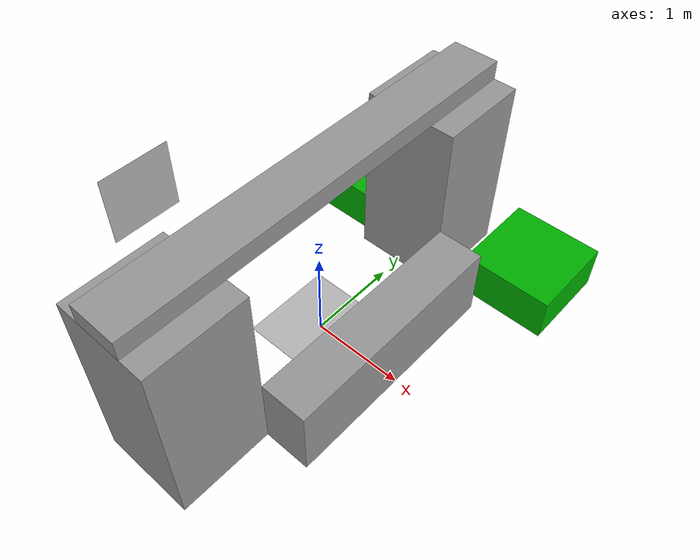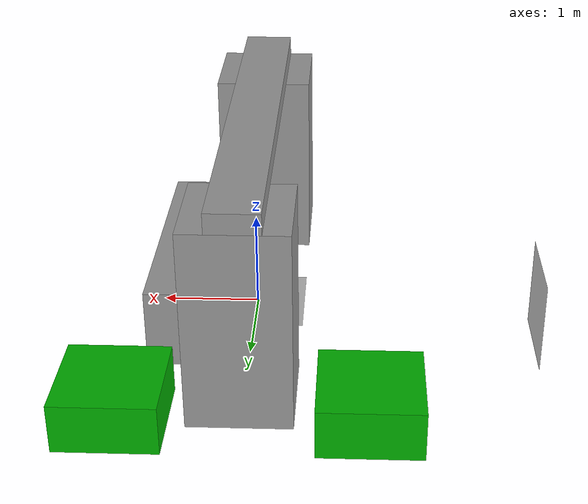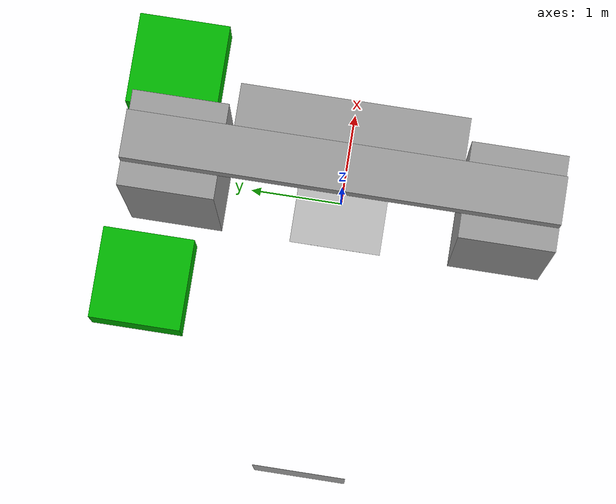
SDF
<?xml version="1.0" ?>
<sdf version="1.6">
  <world name="scene">
    <model name="floor">
      <static>1</static>
      <link name="floor_world_link"/>
      <link name="floor_link">
        <pose>0 0 0 0 0 0</pose>
        <gravity>0</gravity>
        <visual name="floor_visual">
          <geometry>
            <plane>
              <normal>0 0 1</normal>
              <size>1 1</size>
            </plane>
          </geometry>
        </visual>
        <collision name="floor_col">
          <geometry>
            <plane>
              <normal>0 0 1</normal>
              <size>100 100</size>
            </plane>
          </geometry>
        </collision>
      </link>
      <joint name="floor_base" type="fixed">
        <parent>floor_world_link</parent>
        <child>floor_link</child>
      </joint>
    </model>
    <model name="backplate">
      <static>1</static>
      <link name="backplate_world_link"/>
      <link name="backplate_link">
        <pose>-3 0 0 0 0 0</pose>
        <gravity>0</gravity>
        <visual name="backplate_visual">
          <geometry>
            <plane>
              <normal>1 0 0</normal>
              <size>1 1</size>
            </plane>
          </geometry>
        </visual>
        <collision name="backplate_col">
          <geometry>
            <plane>
              <normal>1 0 0</normal>
              <size>100 100</size>
            </plane>
          </geometry>
        </collision>
      </link>
      <joint name="backplate_base" type="fixed">
        <parent>backplate_world_link</parent>
        <child>backplate_link</child>
      </joint>
    </model>
    <model name="lowbox">
      <static>1</static>
      <link name="lowbox_world_link"/>
      <link name="lowbox_link">
        <pose>0.75 0.0 0.4 0 0 0</pose>
        <gravity>0</gravity>
        <visual name="lowbox_visual">
          <geometry>
            <box>
              <size>0.5 2.5 0.8</size>
            </box>
          </geometry>
          <material>
            <ambient>0.6 0.6 0.6 1</ambient>
            <diffuse>0.6 0.6 0.6 1</diffuse>
            <specular>0.1 0.1 0.1 1</specular>
            <emissive>0 0 0 0</emissive>
          </material>
        </visual>
        <collision name="lowbox_col">
          <geometry>
            <box>
              <size>0.5 2.5 0.8</size>
            </box>
          </geometry>
        </collision>
      </link>
      <joint name="lowbox_base" type="fixed">
        <parent>lowbox_world_link</parent>
        <child>lowbox_link</child>
      </joint>
    </model>
    <model name="highbox_left">
      <static>1</static>
      <link name="highbox_left_world_link"/>
      <link name="highbox_left_link">
        <pose>0.0 1.75 1.0 0 0 0</pose>
        <gravity>0</gravity>
        <visual name="highbox_left_visual">
          <geometry>
            <box>
              <size>1 1 2</size>
            </box>
          </geometry>
          <material>
            <ambient>0.6 0.6 0.6 1</ambient>
            <diffuse>0.6 0.6 0.6 1</diffuse>
            <specular>0.1 0.1 0.1 1</specular>
            <emissive>0 0 0 0</emissive>
          </material>
        </visual>
        <collision name="highbox_left_col">
          <geometry>
            <box>
              <size>1 1 2</size>
            </box>
          </geometry>
        </collision>
      </link>
      <joint name="highbox_left_base" type="fixed">
        <parent>highbox_left_world_link</parent>
        <child>highbox_left_link</child>
      </joint>
    </model>
    <model name="highbox_right">
      <static>1</static>
      <link name="highbox_right_world_link"/>
      <link name="highbox_right_link">
        <pose>0.0 -1.75 1.0 0 0 0</pose>
        <gravity>0</gravity>
        <visual name="highbox_right_visual">
          <geometry>
            <box>
              <size>1 1 2</size>
            </box>
          </geometry>
          <material>
            <ambient>0.6 0.6 0.6 1</ambient>
            <diffuse>0.6 0.6 0.6 1</diffuse>
            <specular>0.1 0.1 0.1 1</specular>
            <emissive>0 0 0 0</emissive>
          </material>
        </visual>
        <collision name="highbox_right_col">
          <geometry>
            <box>
              <size>1 1 2</size>
            </box>
          </geometry>
        </collision>
      </link>
      <joint name="highbox_right_base" type="fixed">
        <parent>highbox_right_world_link</parent>
        <child>highbox_right_link</child>
      </joint>
    </model>
    <model name="bar">
      <static>1</static>
      <link name="bar_world_link"/>
      <link name="bar_link">
        <pose>0.0 0.0 2.1 0 0 0</pose>
        <gravity>0</gravity>
        <visual name="bar_visual">
          <geometry>
            <box>
              <size>0.5 4.5 0.2</size>
            </box>
          </geometry>
          <material>
            <ambient>0.6 0.6 0.6 1</ambient>
            <diffuse>0.6 0.6 0.6 1</diffuse>
            <specular>0.1 0.1 0.1 1</specular>
            <emissive>0 0 0 0</emissive>
          </material>
        </visual>
        <collision name="bar_col">
          <geometry>
            <box>
              <size>0.5 4.5 0.2</size>
            </box>
          </geometry>
        </collision>
      </link>
      <joint name="bar_base" type="fixed">
        <parent>bar_world_link</parent>
        <child>bar_link</child>
      </joint>
    </model>
    <model name="source_box">
      <static>1</static>
      <link name="source_box_world_link"/>
      <link name="source_box_link">
        <pose>-1.2 2.00 0.125 0 0 0</pose>
        <gravity>0</gravity>
        <visual name="source_visual">
          <geometry>
            <box>
              <size>1 1 0.5</size>
            </box>
          </geometry>
          <material>
            <ambient>0 0.7 0 1</ambient>
            <diffuse>0 0.7 0 1</diffuse>
            <specular>0.1 0.0 0.1 1</specular>
            <emissive>0 0 0 0</emissive>
          </material>
        </visual>
        <collision name="source_col">
          <geometry>
            <box>
              <size>1 1 0.25</size>
            </box>
          </geometry>
        </collision>
      </link>
      <joint name="source_base" type="fixed">
        <parent>source_box_world_link</parent>
        <child>source_box_link</child>
      </joint>
    </model>
    <model name="target_box">
      <static>1</static>
      <link name="target_box_world_link"/>
      <link name="target_box_link">
        <pose>1.2 2.00 0.125 0 0 0</pose>
        <gravity>0</gravity>
        <visual name="target_visual">
          <geometry>
            <box>
              <size>1 1 0.5</size>
            </box>
          </geometry>
          <material>
            <ambient>0 0.7 0 1</ambient>
            <diffuse>0 0.7 0 1</diffuse>
            <specular>0.1 0.0 0.1 1</specular>
            <emissive>0 0 0 0</emissive>
          </material>
        </visual>
        <collision name="target_col">
          <geometry>
            <box>
              <size>1 1 0.25</size>
            </box>
          </geometry>
        </collision>
      </link>
      <joint name="target_base" type="fixed">
        <parent>target_box_world_link</parent>
        <child>target_box_link</child>
      </joint>
    </model>
  </world>
</sdf>
